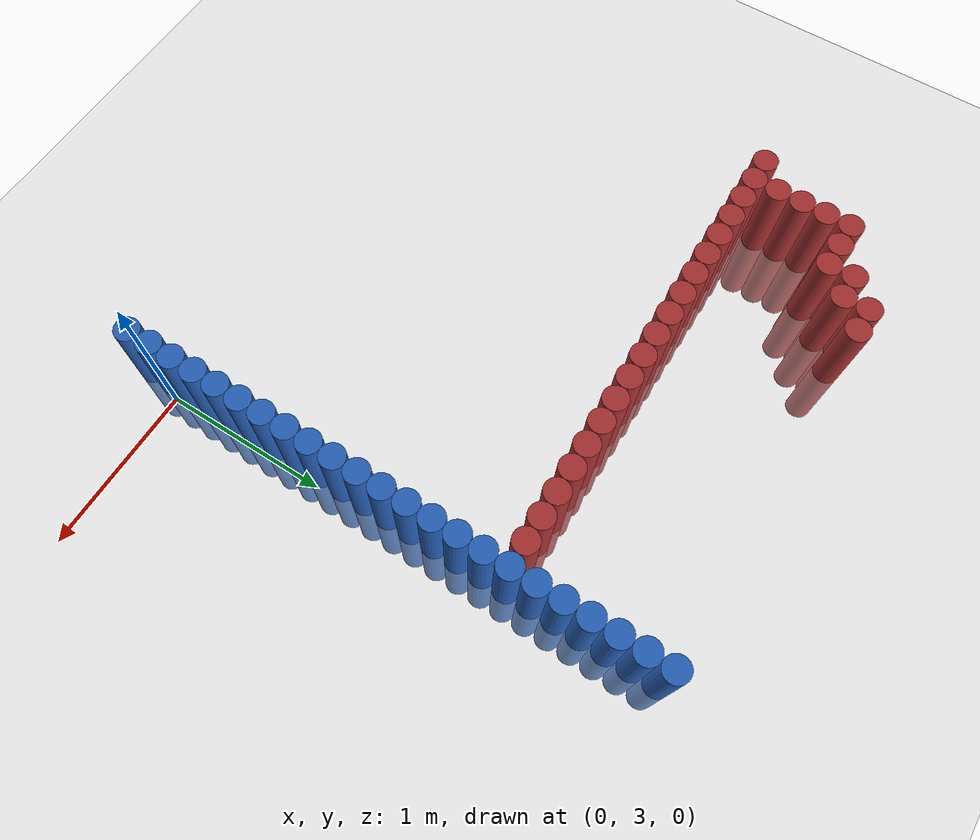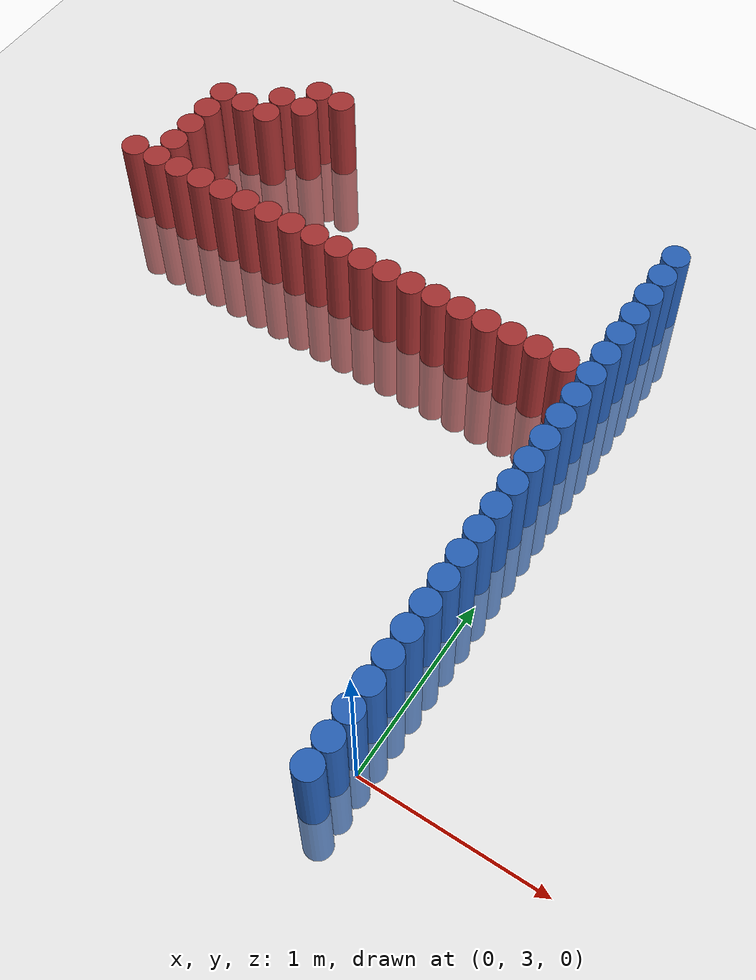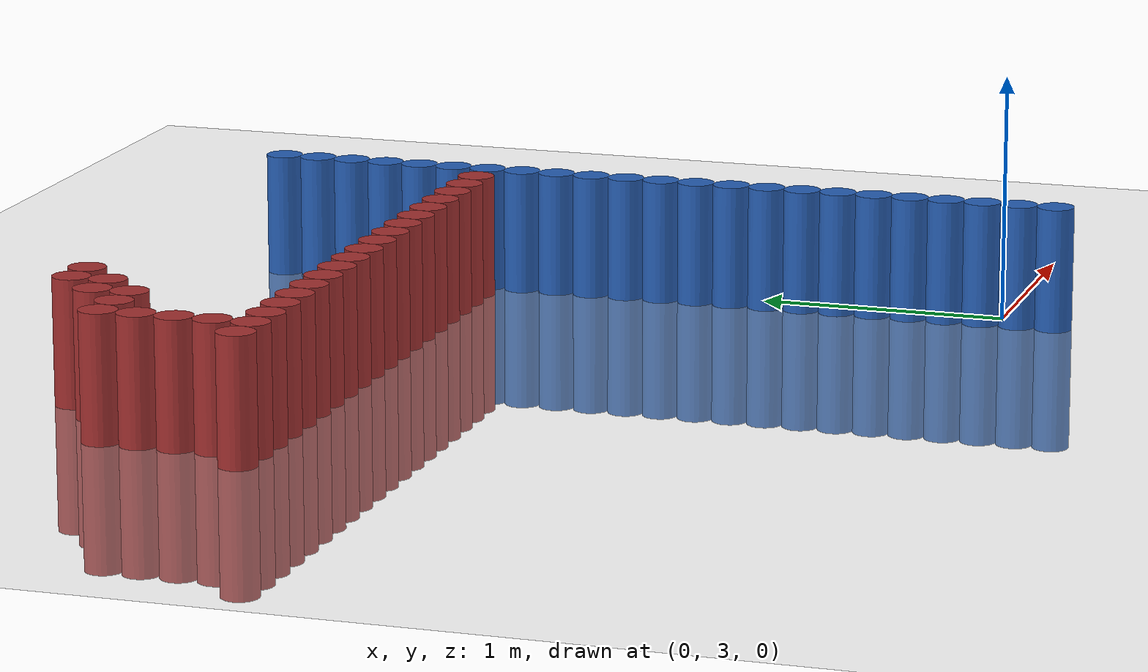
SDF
<sdf version="1.6">
 <world name="default">
  <model name="ground_plane">
   <static>1</static>
   <link name="link">
    <collision name="collision">
     <geometry><plane><normal>0 0 1</normal><size>100 100</size></plane></geometry>
     <surface><friction><ode><mu>100</mu><mu2>50</mu2></ode></friction></surface>
    </collision>
    <visual name="visual">
     <cast_shadows>0</cast_shadows>
     <geometry><plane><normal>0 0 1</normal><size>100 100</size></plane></geometry>
     <material>
      <script><uri>file://media/materials/scripts/gazebo.material</uri><name>Gazebo/Grey</name></script>
     </material>
    </visual>
   </link>
  </model>
  <model name="unit_cylinder_93">
   <static>1</static>
   <pose>-0.075000 2.775000 0.000000 0.000000 0.000000 0.000000</pose>
   <link name="link">
    <inertial>
     <mass>1</mass>
     <inertia><ixx>0.145833</ixx><ixy>0</ixy><ixz>0</ixz><iyy>0.145833</iyy><iyz>0</iyz><izz>0.125</izz></inertia>
    </inertial>
    <collision name="collision">
     <geometry><cylinder><radius>0.075000</radius><length>1</length></cylinder></geometry>
    </collision>
    <visual name="visual">
     <geometry><cylinder><radius>0.075000</radius><length>1</length></cylinder></geometry>
     <material>
      <ambient>0.152000 0.379000 0.720000 1</ambient>
      <diffuse>0.152000 0.379000 0.720000 1</diffuse>
     </material>
     <material>
      <script><name>Gazebo/Grey</name><uri>file://media/materials/scripts/gazebo.material</uri></script>
     </material>
    </visual>
   </link>
  </model>
  <model name="unit_cylinder_95">
   <static>1</static>
   <pose>-0.075000 2.925000 0.000000 0.000000 0.000000 0.000000</pose>
   <link name="link">
    <inertial>
     <mass>1</mass>
     <inertia><ixx>0.145833</ixx><ixy>0</ixy><ixz>0</ixz><iyy>0.145833</iyy><iyz>0</iyz><izz>0.125</izz></inertia>
    </inertial>
    <collision name="collision">
     <geometry><cylinder><radius>0.075000</radius><length>1</length></cylinder></geometry>
    </collision>
    <visual name="visual">
     <geometry><cylinder><radius>0.075000</radius><length>1</length></cylinder></geometry>
     <material>
      <ambient>0.152000 0.379000 0.720000 1</ambient>
      <diffuse>0.152000 0.379000 0.720000 1</diffuse>
     </material>
     <material>
      <script><name>Gazebo/Grey</name><uri>file://media/materials/scripts/gazebo.material</uri></script>
     </material>
    </visual>
   </link>
  </model>
  <model name="unit_cylinder_97">
   <static>1</static>
   <pose>-0.075000 3.075000 0.000000 0.000000 0.000000 0.000000</pose>
   <link name="link">
    <inertial>
     <mass>1</mass>
     <inertia><ixx>0.145833</ixx><ixy>0</ixy><ixz>0</ixz><iyy>0.145833</iyy><iyz>0</iyz><izz>0.125</izz></inertia>
    </inertial>
    <collision name="collision">
     <geometry><cylinder><radius>0.075000</radius><length>1</length></cylinder></geometry>
    </collision>
    <visual name="visual">
     <geometry><cylinder><radius>0.075000</radius><length>1</length></cylinder></geometry>
     <material>
      <ambient>0.152000 0.379000 0.720000 1</ambient>
      <diffuse>0.152000 0.379000 0.720000 1</diffuse>
     </material>
     <material>
      <script><name>Gazebo/Grey</name><uri>file://media/materials/scripts/gazebo.material</uri></script>
     </material>
    </visual>
   </link>
  </model>
  <model name="unit_cylinder_99">
   <static>1</static>
   <pose>-0.075000 3.225000 0.000000 0.000000 0.000000 0.000000</pose>
   <link name="link">
    <inertial>
     <mass>1</mass>
     <inertia><ixx>0.145833</ixx><ixy>0</ixy><ixz>0</ixz><iyy>0.145833</iyy><iyz>0</iyz><izz>0.125</izz></inertia>
    </inertial>
    <collision name="collision">
     <geometry><cylinder><radius>0.075000</radius><length>1</length></cylinder></geometry>
    </collision>
    <visual name="visual">
     <geometry><cylinder><radius>0.075000</radius><length>1</length></cylinder></geometry>
     <material>
      <ambient>0.152000 0.379000 0.720000 1</ambient>
      <diffuse>0.152000 0.379000 0.720000 1</diffuse>
     </material>
     <material>
      <script><name>Gazebo/Grey</name><uri>file://media/materials/scripts/gazebo.material</uri></script>
     </material>
    </visual>
   </link>
  </model>
  <model name="unit_cylinder_101">
   <static>1</static>
   <pose>-0.075000 3.375000 0.000000 0.000000 0.000000 0.000000</pose>
   <link name="link">
    <inertial>
     <mass>1</mass>
     <inertia><ixx>0.145833</ixx><ixy>0</ixy><ixz>0</ixz><iyy>0.145833</iyy><iyz>0</iyz><izz>0.125</izz></inertia>
    </inertial>
    <collision name="collision">
     <geometry><cylinder><radius>0.075000</radius><length>1</length></cylinder></geometry>
    </collision>
    <visual name="visual">
     <geometry><cylinder><radius>0.075000</radius><length>1</length></cylinder></geometry>
     <material>
      <ambient>0.152000 0.379000 0.720000 1</ambient>
      <diffuse>0.152000 0.379000 0.720000 1</diffuse>
     </material>
     <material>
      <script><name>Gazebo/Grey</name><uri>file://media/materials/scripts/gazebo.material</uri></script>
     </material>
    </visual>
   </link>
  </model>
  <model name="unit_cylinder_103">
   <static>1</static>
   <pose>-0.075000 3.525000 0.000000 0.000000 0.000000 0.000000</pose>
   <link name="link">
    <inertial>
     <mass>1</mass>
     <inertia><ixx>0.145833</ixx><ixy>0</ixy><ixz>0</ixz><iyy>0.145833</iyy><iyz>0</iyz><izz>0.125</izz></inertia>
    </inertial>
    <collision name="collision">
     <geometry><cylinder><radius>0.075000</radius><length>1</length></cylinder></geometry>
    </collision>
    <visual name="visual">
     <geometry><cylinder><radius>0.075000</radius><length>1</length></cylinder></geometry>
     <material>
      <ambient>0.152000 0.379000 0.720000 1</ambient>
      <diffuse>0.152000 0.379000 0.720000 1</diffuse>
     </material>
     <material>
      <script><name>Gazebo/Grey</name><uri>file://media/materials/scripts/gazebo.material</uri></script>
     </material>
    </visual>
   </link>
  </model>
  <model name="unit_cylinder_105">
   <static>1</static>
   <pose>-0.075000 3.675000 0.000000 0.000000 0.000000 0.000000</pose>
   <link name="link">
    <inertial>
     <mass>1</mass>
     <inertia><ixx>0.145833</ixx><ixy>0</ixy><ixz>0</ixz><iyy>0.145833</iyy><iyz>0</iyz><izz>0.125</izz></inertia>
    </inertial>
    <collision name="collision">
     <geometry><cylinder><radius>0.075000</radius><length>1</length></cylinder></geometry>
    </collision>
    <visual name="visual">
     <geometry><cylinder><radius>0.075000</radius><length>1</length></cylinder></geometry>
     <material>
      <ambient>0.152000 0.379000 0.720000 1</ambient>
      <diffuse>0.152000 0.379000 0.720000 1</diffuse>
     </material>
     <material>
      <script><name>Gazebo/Grey</name><uri>file://media/materials/scripts/gazebo.material</uri></script>
     </material>
    </visual>
   </link>
  </model>
  <model name="unit_cylinder_107">
   <static>1</static>
   <pose>-0.075000 3.825000 0.000000 0.000000 0.000000 0.000000</pose>
   <link name="link">
    <inertial>
     <mass>1</mass>
     <inertia><ixx>0.145833</ixx><ixy>0</ixy><ixz>0</ixz><iyy>0.145833</iyy><iyz>0</iyz><izz>0.125</izz></inertia>
    </inertial>
    <collision name="collision">
     <geometry><cylinder><radius>0.075000</radius><length>1</length></cylinder></geometry>
    </collision>
    <visual name="visual">
     <geometry><cylinder><radius>0.075000</radius><length>1</length></cylinder></geometry>
     <material>
      <ambient>0.152000 0.379000 0.720000 1</ambient>
      <diffuse>0.152000 0.379000 0.720000 1</diffuse>
     </material>
     <material>
      <script><name>Gazebo/Grey</name><uri>file://media/materials/scripts/gazebo.material</uri></script>
     </material>
    </visual>
   </link>
  </model>
  <model name="unit_cylinder_109">
   <static>1</static>
   <pose>-0.075000 3.975000 0.000000 0.000000 0.000000 0.000000</pose>
   <link name="link">
    <inertial>
     <mass>1</mass>
     <inertia><ixx>0.145833</ixx><ixy>0</ixy><ixz>0</ixz><iyy>0.145833</iyy><iyz>0</iyz><izz>0.125</izz></inertia>
    </inertial>
    <collision name="collision">
     <geometry><cylinder><radius>0.075000</radius><length>1</length></cylinder></geometry>
    </collision>
    <visual name="visual">
     <geometry><cylinder><radius>0.075000</radius><length>1</length></cylinder></geometry>
     <material>
      <ambient>0.152000 0.379000 0.720000 1</ambient>
      <diffuse>0.152000 0.379000 0.720000 1</diffuse>
     </material>
     <material>
      <script><name>Gazebo/Grey</name><uri>file://media/materials/scripts/gazebo.material</uri></script>
     </material>
    </visual>
   </link>
  </model>
  <model name="unit_cylinder_111">
   <static>1</static>
   <pose>-0.075000 4.125000 0.000000 0.000000 0.000000 0.000000</pose>
   <link name="link">
    <inertial>
     <mass>1</mass>
     <inertia><ixx>0.145833</ixx><ixy>0</ixy><ixz>0</ixz><iyy>0.145833</iyy><iyz>0</iyz><izz>0.125</izz></inertia>
    </inertial>
    <collision name="collision">
     <geometry><cylinder><radius>0.075000</radius><length>1</length></cylinder></geometry>
    </collision>
    <visual name="visual">
     <geometry><cylinder><radius>0.075000</radius><length>1</length></cylinder></geometry>
     <material>
      <ambient>0.152000 0.379000 0.720000 1</ambient>
      <diffuse>0.152000 0.379000 0.720000 1</diffuse>
     </material>
     <material>
      <script><name>Gazebo/Grey</name><uri>file://media/materials/scripts/gazebo.material</uri></script>
     </material>
    </visual>
   </link>
  </model>
  <model name="unit_cylinder_113">
   <static>1</static>
   <pose>-0.075000 4.275000 0.000000 0.000000 0.000000 0.000000</pose>
   <link name="link">
    <inertial>
     <mass>1</mass>
     <inertia><ixx>0.145833</ixx><ixy>0</ixy><ixz>0</ixz><iyy>0.145833</iyy><iyz>0</iyz><izz>0.125</izz></inertia>
    </inertial>
    <collision name="collision">
     <geometry><cylinder><radius>0.075000</radius><length>1</length></cylinder></geometry>
    </collision>
    <visual name="visual">
     <geometry><cylinder><radius>0.075000</radius><length>1</length></cylinder></geometry>
     <material>
      <ambient>0.152000 0.379000 0.720000 1</ambient>
      <diffuse>0.152000 0.379000 0.720000 1</diffuse>
     </material>
     <material>
      <script><name>Gazebo/Grey</name><uri>file://media/materials/scripts/gazebo.material</uri></script>
     </material>
    </visual>
   </link>
  </model>
  <model name="unit_cylinder_115">
   <static>1</static>
   <pose>-0.075000 4.425000 0.000000 0.000000 0.000000 0.000000</pose>
   <link name="link">
    <inertial>
     <mass>1</mass>
     <inertia><ixx>0.145833</ixx><ixy>0</ixy><ixz>0</ixz><iyy>0.145833</iyy><iyz>0</iyz><izz>0.125</izz></inertia>
    </inertial>
    <collision name="collision">
     <geometry><cylinder><radius>0.075000</radius><length>1</length></cylinder></geometry>
    </collision>
    <visual name="visual">
     <geometry><cylinder><radius>0.075000</radius><length>1</length></cylinder></geometry>
     <material>
      <ambient>0.152000 0.379000 0.720000 1</ambient>
      <diffuse>0.152000 0.379000 0.720000 1</diffuse>
     </material>
     <material>
      <script><name>Gazebo/Grey</name><uri>file://media/materials/scripts/gazebo.material</uri></script>
     </material>
    </visual>
   </link>
  </model>
  <model name="unit_cylinder_117">
   <static>1</static>
   <pose>-0.075000 4.575000 0.000000 0.000000 0.000000 0.000000</pose>
   <link name="link">
    <inertial>
     <mass>1</mass>
     <inertia><ixx>0.145833</ixx><ixy>0</ixy><ixz>0</ixz><iyy>0.145833</iyy><iyz>0</iyz><izz>0.125</izz></inertia>
    </inertial>
    <collision name="collision">
     <geometry><cylinder><radius>0.075000</radius><length>1</length></cylinder></geometry>
    </collision>
    <visual name="visual">
     <geometry><cylinder><radius>0.075000</radius><length>1</length></cylinder></geometry>
     <material>
      <ambient>0.152000 0.379000 0.720000 1</ambient>
      <diffuse>0.152000 0.379000 0.720000 1</diffuse>
     </material>
     <material>
      <script><name>Gazebo/Grey</name><uri>file://media/materials/scripts/gazebo.material</uri></script>
     </material>
    </visual>
   </link>
  </model>
  <model name="unit_cylinder_119">
   <static>1</static>
   <pose>-0.075000 4.725000 0.000000 0.000000 0.000000 0.000000</pose>
   <link name="link">
    <inertial>
     <mass>1</mass>
     <inertia><ixx>0.145833</ixx><ixy>0</ixy><ixz>0</ixz><iyy>0.145833</iyy><iyz>0</iyz><izz>0.125</izz></inertia>
    </inertial>
    <collision name="collision">
     <geometry><cylinder><radius>0.075000</radius><length>1</length></cylinder></geometry>
    </collision>
    <visual name="visual">
     <geometry><cylinder><radius>0.075000</radius><length>1</length></cylinder></geometry>
     <material>
      <ambient>0.152000 0.379000 0.720000 1</ambient>
      <diffuse>0.152000 0.379000 0.720000 1</diffuse>
     </material>
     <material>
      <script><name>Gazebo/Grey</name><uri>file://media/materials/scripts/gazebo.material</uri></script>
     </material>
    </visual>
   </link>
  </model>
  <model name="unit_cylinder_121">
   <static>1</static>
   <pose>-0.075000 4.875000 0.000000 0.000000 0.000000 0.000000</pose>
   <link name="link">
    <inertial>
     <mass>1</mass>
     <inertia><ixx>0.145833</ixx><ixy>0</ixy><ixz>0</ixz><iyy>0.145833</iyy><iyz>0</iyz><izz>0.125</izz></inertia>
    </inertial>
    <collision name="collision">
     <geometry><cylinder><radius>0.075000</radius><length>1</length></cylinder></geometry>
    </collision>
    <visual name="visual">
     <geometry><cylinder><radius>0.075000</radius><length>1</length></cylinder></geometry>
     <material>
      <ambient>0.152000 0.379000 0.720000 1</ambient>
      <diffuse>0.152000 0.379000 0.720000 1</diffuse>
     </material>
     <material>
      <script><name>Gazebo/Grey</name><uri>file://media/materials/scripts/gazebo.material</uri></script>
     </material>
    </visual>
   </link>
  </model>
  <model name="unit_cylinder_123">
   <static>1</static>
   <pose>-0.075000 5.025000 0.000000 0.000000 0.000000 0.000000</pose>
   <link name="link">
    <inertial>
     <mass>1</mass>
     <inertia><ixx>0.145833</ixx><ixy>0</ixy><ixz>0</ixz><iyy>0.145833</iyy><iyz>0</iyz><izz>0.125</izz></inertia>
    </inertial>
    <collision name="collision">
     <geometry><cylinder><radius>0.075000</radius><length>1</length></cylinder></geometry>
    </collision>
    <visual name="visual">
     <geometry><cylinder><radius>0.075000</radius><length>1</length></cylinder></geometry>
     <material>
      <ambient>0.152000 0.379000 0.720000 1</ambient>
      <diffuse>0.152000 0.379000 0.720000 1</diffuse>
     </material>
     <material>
      <script><name>Gazebo/Grey</name><uri>file://media/materials/scripts/gazebo.material</uri></script>
     </material>
    </visual>
   </link>
  </model>
  <model name="unit_cylinder_317">
   <static>1</static>
   <pose>-2.925000 5.175000 0.000000 0.000000 0.000000 0.000000</pose>
   <link name="link">
    <inertial>
     <mass>1</mass>
     <inertia><ixx>0.145833</ixx><ixy>0</ixy><ixz>0</ixz><iyy>0.145833</iyy><iyz>0</iyz><izz>0.125</izz></inertia>
    </inertial>
    <collision name="collision">
     <geometry><cylinder><radius>0.075000</radius><length>1</length></cylinder></geometry>
    </collision>
    <visual name="visual">
     <geometry><cylinder><radius>0.075000</radius><length>1</length></cylinder></geometry>
     <material>
      <ambient>0.648000 0.192000 0.192000 1</ambient>
      <diffuse>0.648000 0.192000 0.192000 1</diffuse>
     </material>
     <material>
      <script><name>Gazebo/Grey</name><uri>file://media/materials/scripts/gazebo.material</uri></script>
     </material>
    </visual>
   </link>
  </model>
  <model name="unit_cylinder_318">
   <static>1</static>
   <pose>-2.775000 5.175000 0.000000 0.000000 0.000000 0.000000</pose>
   <link name="link">
    <inertial>
     <mass>1</mass>
     <inertia><ixx>0.145833</ixx><ixy>0</ixy><ixz>0</ixz><iyy>0.145833</iyy><iyz>0</iyz><izz>0.125</izz></inertia>
    </inertial>
    <collision name="collision">
     <geometry><cylinder><radius>0.075000</radius><length>1</length></cylinder></geometry>
    </collision>
    <visual name="visual">
     <geometry><cylinder><radius>0.075000</radius><length>1</length></cylinder></geometry>
     <material>
      <ambient>0.648000 0.192000 0.192000 1</ambient>
      <diffuse>0.648000 0.192000 0.192000 1</diffuse>
     </material>
     <material>
      <script><name>Gazebo/Grey</name><uri>file://media/materials/scripts/gazebo.material</uri></script>
     </material>
    </visual>
   </link>
  </model>
  <model name="unit_cylinder_319">
   <static>1</static>
   <pose>-2.775000 5.325000 0.000000 0.000000 0.000000 0.000000</pose>
   <link name="link">
    <inertial>
     <mass>1</mass>
     <inertia><ixx>0.145833</ixx><ixy>0</ixy><ixz>0</ixz><iyy>0.145833</iyy><iyz>0</iyz><izz>0.125</izz></inertia>
    </inertial>
    <collision name="collision">
     <geometry><cylinder><radius>0.075000</radius><length>1</length></cylinder></geometry>
    </collision>
    <visual name="visual">
     <geometry><cylinder><radius>0.075000</radius><length>1</length></cylinder></geometry>
     <material>
      <ambient>0.648000 0.192000 0.192000 1</ambient>
      <diffuse>0.648000 0.192000 0.192000 1</diffuse>
     </material>
     <material>
      <script><name>Gazebo/Grey</name><uri>file://media/materials/scripts/gazebo.material</uri></script>
     </material>
    </visual>
   </link>
  </model>
  <model name="unit_cylinder_320">
   <static>1</static>
   <pose>-2.775000 5.475000 0.000000 0.000000 0.000000 0.000000</pose>
   <link name="link">
    <inertial>
     <mass>1</mass>
     <inertia><ixx>0.145833</ixx><ixy>0</ixy><ixz>0</ixz><iyy>0.145833</iyy><iyz>0</iyz><izz>0.125</izz></inertia>
    </inertial>
    <collision name="collision">
     <geometry><cylinder><radius>0.075000</radius><length>1</length></cylinder></geometry>
    </collision>
    <visual name="visual">
     <geometry><cylinder><radius>0.075000</radius><length>1</length></cylinder></geometry>
     <material>
      <ambient>0.648000 0.192000 0.192000 1</ambient>
      <diffuse>0.648000 0.192000 0.192000 1</diffuse>
     </material>
     <material>
      <script><name>Gazebo/Grey</name><uri>file://media/materials/scripts/gazebo.material</uri></script>
     </material>
    </visual>
   </link>
  </model>
  <model name="unit_cylinder_321">
   <static>1</static>
   <pose>-2.775000 5.625000 0.000000 0.000000 0.000000 0.000000</pose>
   <link name="link">
    <inertial>
     <mass>1</mass>
     <inertia><ixx>0.145833</ixx><ixy>0</ixy><ixz>0</ixz><iyy>0.145833</iyy><iyz>0</iyz><izz>0.125</izz></inertia>
    </inertial>
    <collision name="collision">
     <geometry><cylinder><radius>0.075000</radius><length>1</length></cylinder></geometry>
    </collision>
    <visual name="visual">
     <geometry><cylinder><radius>0.075000</radius><length>1</length></cylinder></geometry>
     <material>
      <ambient>0.648000 0.192000 0.192000 1</ambient>
      <diffuse>0.648000 0.192000 0.192000 1</diffuse>
     </material>
     <material>
      <script><name>Gazebo/Grey</name><uri>file://media/materials/scripts/gazebo.material</uri></script>
     </material>
    </visual>
   </link>
  </model>
  <model name="unit_cylinder_322">
   <static>1</static>
   <pose>-2.775000 5.775000 0.000000 0.000000 0.000000 0.000000</pose>
   <link name="link">
    <inertial>
     <mass>1</mass>
     <inertia><ixx>0.145833</ixx><ixy>0</ixy><ixz>0</ixz><iyy>0.145833</iyy><iyz>0</iyz><izz>0.125</izz></inertia>
    </inertial>
    <collision name="collision">
     <geometry><cylinder><radius>0.075000</radius><length>1</length></cylinder></geometry>
    </collision>
    <visual name="visual">
     <geometry><cylinder><radius>0.075000</radius><length>1</length></cylinder></geometry>
     <material>
      <ambient>0.648000 0.192000 0.192000 1</ambient>
      <diffuse>0.648000 0.192000 0.192000 1</diffuse>
     </material>
     <material>
      <script><name>Gazebo/Grey</name><uri>file://media/materials/scripts/gazebo.material</uri></script>
     </material>
    </visual>
   </link>
  </model>
  <model name="unit_cylinder_323">
   <static>1</static>
   <pose>-2.625000 5.175000 0.000000 0.000000 0.000000 0.000000</pose>
   <link name="link">
    <inertial>
     <mass>1</mass>
     <inertia><ixx>0.145833</ixx><ixy>0</ixy><ixz>0</ixz><iyy>0.145833</iyy><iyz>0</iyz><izz>0.125</izz></inertia>
    </inertial>
    <collision name="collision">
     <geometry><cylinder><radius>0.075000</radius><length>1</length></cylinder></geometry>
    </collision>
    <visual name="visual">
     <geometry><cylinder><radius>0.075000</radius><length>1</length></cylinder></geometry>
     <material>
      <ambient>0.648000 0.192000 0.192000 1</ambient>
      <diffuse>0.648000 0.192000 0.192000 1</diffuse>
     </material>
     <material>
      <script><name>Gazebo/Grey</name><uri>file://media/materials/scripts/gazebo.material</uri></script>
     </material>
    </visual>
   </link>
  </model>
  <model name="unit_cylinder_324">
   <static>1</static>
   <pose>-2.625000 5.775000 0.000000 0.000000 0.000000 0.000000</pose>
   <link name="link">
    <inertial>
     <mass>1</mass>
     <inertia><ixx>0.145833</ixx><ixy>0</ixy><ixz>0</ixz><iyy>0.145833</iyy><iyz>0</iyz><izz>0.125</izz></inertia>
    </inertial>
    <collision name="collision">
     <geometry><cylinder><radius>0.075000</radius><length>1</length></cylinder></geometry>
    </collision>
    <visual name="visual">
     <geometry><cylinder><radius>0.075000</radius><length>1</length></cylinder></geometry>
     <material>
      <ambient>0.648000 0.192000 0.192000 1</ambient>
      <diffuse>0.648000 0.192000 0.192000 1</diffuse>
     </material>
     <material>
      <script><name>Gazebo/Grey</name><uri>file://media/materials/scripts/gazebo.material</uri></script>
     </material>
    </visual>
   </link>
  </model>
  <model name="unit_cylinder_325">
   <static>1</static>
   <pose>-2.475000 5.175000 0.000000 0.000000 0.000000 0.000000</pose>
   <link name="link">
    <inertial>
     <mass>1</mass>
     <inertia><ixx>0.145833</ixx><ixy>0</ixy><ixz>0</ixz><iyy>0.145833</iyy><iyz>0</iyz><izz>0.125</izz></inertia>
    </inertial>
    <collision name="collision">
     <geometry><cylinder><radius>0.075000</radius><length>1</length></cylinder></geometry>
    </collision>
    <visual name="visual">
     <geometry><cylinder><radius>0.075000</radius><length>1</length></cylinder></geometry>
     <material>
      <ambient>0.648000 0.192000 0.192000 1</ambient>
      <diffuse>0.648000 0.192000 0.192000 1</diffuse>
     </material>
     <material>
      <script><name>Gazebo/Grey</name><uri>file://media/materials/scripts/gazebo.material</uri></script>
     </material>
    </visual>
   </link>
  </model>
  <model name="unit_cylinder_326">
   <static>1</static>
   <pose>-2.475000 5.775000 0.000000 0.000000 0.000000 0.000000</pose>
   <link name="link">
    <inertial>
     <mass>1</mass>
     <inertia><ixx>0.145833</ixx><ixy>0</ixy><ixz>0</ixz><iyy>0.145833</iyy><iyz>0</iyz><izz>0.125</izz></inertia>
    </inertial>
    <collision name="collision">
     <geometry><cylinder><radius>0.075000</radius><length>1</length></cylinder></geometry>
    </collision>
    <visual name="visual">
     <geometry><cylinder><radius>0.075000</radius><length>1</length></cylinder></geometry>
     <material>
      <ambient>0.648000 0.192000 0.192000 1</ambient>
      <diffuse>0.648000 0.192000 0.192000 1</diffuse>
     </material>
     <material>
      <script><name>Gazebo/Grey</name><uri>file://media/materials/scripts/gazebo.material</uri></script>
     </material>
    </visual>
   </link>
  </model>
  <model name="unit_cylinder_327">
   <static>1</static>
   <pose>-2.475000 5.925000 0.000000 0.000000 0.000000 0.000000</pose>
   <link name="link">
    <inertial>
     <mass>1</mass>
     <inertia><ixx>0.145833</ixx><ixy>0</ixy><ixz>0</ixz><iyy>0.145833</iyy><iyz>0</iyz><izz>0.125</izz></inertia>
    </inertial>
    <collision name="collision">
     <geometry><cylinder><radius>0.075000</radius><length>1</length></cylinder></geometry>
    </collision>
    <visual name="visual">
     <geometry><cylinder><radius>0.075000</radius><length>1</length></cylinder></geometry>
     <material>
      <ambient>0.648000 0.192000 0.192000 1</ambient>
      <diffuse>0.648000 0.192000 0.192000 1</diffuse>
     </material>
     <material>
      <script><name>Gazebo/Grey</name><uri>file://media/materials/scripts/gazebo.material</uri></script>
     </material>
    </visual>
   </link>
  </model>
  <model name="unit_cylinder_328">
   <static>1</static>
   <pose>-2.325000 5.175000 0.000000 0.000000 0.000000 0.000000</pose>
   <link name="link">
    <inertial>
     <mass>1</mass>
     <inertia><ixx>0.145833</ixx><ixy>0</ixy><ixz>0</ixz><iyy>0.145833</iyy><iyz>0</iyz><izz>0.125</izz></inertia>
    </inertial>
    <collision name="collision">
     <geometry><cylinder><radius>0.075000</radius><length>1</length></cylinder></geometry>
    </collision>
    <visual name="visual">
     <geometry><cylinder><radius>0.075000</radius><length>1</length></cylinder></geometry>
     <material>
      <ambient>0.648000 0.192000 0.192000 1</ambient>
      <diffuse>0.648000 0.192000 0.192000 1</diffuse>
     </material>
     <material>
      <script><name>Gazebo/Grey</name><uri>file://media/materials/scripts/gazebo.material</uri></script>
     </material>
    </visual>
   </link>
  </model>
  <model name="unit_cylinder_329">
   <static>1</static>
   <pose>-2.325000 5.925000 0.000000 0.000000 0.000000 0.000000</pose>
   <link name="link">
    <inertial>
     <mass>1</mass>
     <inertia><ixx>0.145833</ixx><ixy>0</ixy><ixz>0</ixz><iyy>0.145833</iyy><iyz>0</iyz><izz>0.125</izz></inertia>
    </inertial>
    <collision name="collision">
     <geometry><cylinder><radius>0.075000</radius><length>1</length></cylinder></geometry>
    </collision>
    <visual name="visual">
     <geometry><cylinder><radius>0.075000</radius><length>1</length></cylinder></geometry>
     <material>
      <ambient>0.648000 0.192000 0.192000 1</ambient>
      <diffuse>0.648000 0.192000 0.192000 1</diffuse>
     </material>
     <material>
      <script><name>Gazebo/Grey</name><uri>file://media/materials/scripts/gazebo.material</uri></script>
     </material>
    </visual>
   </link>
  </model>
  <model name="unit_cylinder_330">
   <static>1</static>
   <pose>-2.325000 6.075000 0.000000 0.000000 0.000000 0.000000</pose>
   <link name="link">
    <inertial>
     <mass>1</mass>
     <inertia><ixx>0.145833</ixx><ixy>0</ixy><ixz>0</ixz><iyy>0.145833</iyy><iyz>0</iyz><izz>0.125</izz></inertia>
    </inertial>
    <collision name="collision">
     <geometry><cylinder><radius>0.075000</radius><length>1</length></cylinder></geometry>
    </collision>
    <visual name="visual">
     <geometry><cylinder><radius>0.075000</radius><length>1</length></cylinder></geometry>
     <material>
      <ambient>0.648000 0.192000 0.192000 1</ambient>
      <diffuse>0.648000 0.192000 0.192000 1</diffuse>
     </material>
     <material>
      <script><name>Gazebo/Grey</name><uri>file://media/materials/scripts/gazebo.material</uri></script>
     </material>
    </visual>
   </link>
  </model>
  <model name="unit_cylinder_331">
   <static>1</static>
   <pose>-2.175000 5.175000 0.000000 0.000000 0.000000 0.000000</pose>
   <link name="link">
    <inertial>
     <mass>1</mass>
     <inertia><ixx>0.145833</ixx><ixy>0</ixy><ixz>0</ixz><iyy>0.145833</iyy><iyz>0</iyz><izz>0.125</izz></inertia>
    </inertial>
    <collision name="collision">
     <geometry><cylinder><radius>0.075000</radius><length>1</length></cylinder></geometry>
    </collision>
    <visual name="visual">
     <geometry><cylinder><radius>0.075000</radius><length>1</length></cylinder></geometry>
     <material>
      <ambient>0.648000 0.192000 0.192000 1</ambient>
      <diffuse>0.648000 0.192000 0.192000 1</diffuse>
     </material>
     <material>
      <script><name>Gazebo/Grey</name><uri>file://media/materials/scripts/gazebo.material</uri></script>
     </material>
    </visual>
   </link>
  </model>
  <model name="unit_cylinder_332">
   <static>1</static>
   <pose>-2.175000 6.075000 0.000000 0.000000 0.000000 0.000000</pose>
   <link name="link">
    <inertial>
     <mass>1</mass>
     <inertia><ixx>0.145833</ixx><ixy>0</ixy><ixz>0</ixz><iyy>0.145833</iyy><iyz>0</iyz><izz>0.125</izz></inertia>
    </inertial>
    <collision name="collision">
     <geometry><cylinder><radius>0.075000</radius><length>1</length></cylinder></geometry>
    </collision>
    <visual name="visual">
     <geometry><cylinder><radius>0.075000</radius><length>1</length></cylinder></geometry>
     <material>
      <ambient>0.648000 0.192000 0.192000 1</ambient>
      <diffuse>0.648000 0.192000 0.192000 1</diffuse>
     </material>
     <material>
      <script><name>Gazebo/Grey</name><uri>file://media/materials/scripts/gazebo.material</uri></script>
     </material>
    </visual>
   </link>
  </model>
  <model name="unit_cylinder_334">
   <static>1</static>
   <pose>-2.025000 5.175000 0.000000 0.000000 0.000000 0.000000</pose>
   <link name="link">
    <inertial>
     <mass>1</mass>
     <inertia><ixx>0.145833</ixx><ixy>0</ixy><ixz>0</ixz><iyy>0.145833</iyy><iyz>0</iyz><izz>0.125</izz></inertia>
    </inertial>
    <collision name="collision">
     <geometry><cylinder><radius>0.075000</radius><length>1</length></cylinder></geometry>
    </collision>
    <visual name="visual">
     <geometry><cylinder><radius>0.075000</radius><length>1</length></cylinder></geometry>
     <material>
      <ambient>0.648000 0.192000 0.192000 1</ambient>
      <diffuse>0.648000 0.192000 0.192000 1</diffuse>
     </material>
     <material>
      <script><name>Gazebo/Grey</name><uri>file://media/materials/scripts/gazebo.material</uri></script>
     </material>
    </visual>
   </link>
  </model>
  <model name="unit_cylinder_340">
   <static>1</static>
   <pose>-1.875000 5.175000 0.000000 0.000000 0.000000 0.000000</pose>
   <link name="link">
    <inertial>
     <mass>1</mass>
     <inertia><ixx>0.145833</ixx><ixy>0</ixy><ixz>0</ixz><iyy>0.145833</iyy><iyz>0</iyz><izz>0.125</izz></inertia>
    </inertial>
    <collision name="collision">
     <geometry><cylinder><radius>0.075000</radius><length>1</length></cylinder></geometry>
    </collision>
    <visual name="visual">
     <geometry><cylinder><radius>0.075000</radius><length>1</length></cylinder></geometry>
     <material>
      <ambient>0.648000 0.192000 0.192000 1</ambient>
      <diffuse>0.648000 0.192000 0.192000 1</diffuse>
     </material>
     <material>
      <script><name>Gazebo/Grey</name><uri>file://media/materials/scripts/gazebo.material</uri></script>
     </material>
    </visual>
   </link>
  </model>
  <model name="unit_cylinder_362">
   <static>1</static>
   <pose>-1.725000 5.175000 0.000000 0.000000 0.000000 0.000000</pose>
   <link name="link">
    <inertial>
     <mass>1</mass>
     <inertia><ixx>0.145833</ixx><ixy>0</ixy><ixz>0</ixz><iyy>0.145833</iyy><iyz>0</iyz><izz>0.125</izz></inertia>
    </inertial>
    <collision name="collision">
     <geometry><cylinder><radius>0.075000</radius><length>1</length></cylinder></geometry>
    </collision>
    <visual name="visual">
     <geometry><cylinder><radius>0.075000</radius><length>1</length></cylinder></geometry>
     <material>
      <ambient>0.648000 0.192000 0.192000 1</ambient>
      <diffuse>0.648000 0.192000 0.192000 1</diffuse>
     </material>
     <material>
      <script><name>Gazebo/Grey</name><uri>file://media/materials/scripts/gazebo.material</uri></script>
     </material>
    </visual>
   </link>
  </model>
  <model name="unit_cylinder_364">
   <static>1</static>
   <pose>-1.575000 5.175000 0.000000 0.000000 0.000000 0.000000</pose>
   <link name="link">
    <inertial>
     <mass>1</mass>
     <inertia><ixx>0.145833</ixx><ixy>0</ixy><ixz>0</ixz><iyy>0.145833</iyy><iyz>0</iyz><izz>0.125</izz></inertia>
    </inertial>
    <collision name="collision">
     <geometry><cylinder><radius>0.075000</radius><length>1</length></cylinder></geometry>
    </collision>
    <visual name="visual">
     <geometry><cylinder><radius>0.075000</radius><length>1</length></cylinder></geometry>
     <material>
      <ambient>0.648000 0.192000 0.192000 1</ambient>
      <diffuse>0.648000 0.192000 0.192000 1</diffuse>
     </material>
     <material>
      <script><name>Gazebo/Grey</name><uri>file://media/materials/scripts/gazebo.material</uri></script>
     </material>
    </visual>
   </link>
  </model>
  <model name="unit_cylinder_366">
   <static>1</static>
   <pose>-1.425000 5.175000 0.000000 0.000000 0.000000 0.000000</pose>
   <link name="link">
    <inertial>
     <mass>1</mass>
     <inertia><ixx>0.145833</ixx><ixy>0</ixy><ixz>0</ixz><iyy>0.145833</iyy><iyz>0</iyz><izz>0.125</izz></inertia>
    </inertial>
    <collision name="collision">
     <geometry><cylinder><radius>0.075000</radius><length>1</length></cylinder></geometry>
    </collision>
    <visual name="visual">
     <geometry><cylinder><radius>0.075000</radius><length>1</length></cylinder></geometry>
     <material>
      <ambient>0.648000 0.192000 0.192000 1</ambient>
      <diffuse>0.648000 0.192000 0.192000 1</diffuse>
     </material>
     <material>
      <script><name>Gazebo/Grey</name><uri>file://media/materials/scripts/gazebo.material</uri></script>
     </material>
    </visual>
   </link>
  </model>
  <model name="unit_cylinder_368">
   <static>1</static>
   <pose>-1.275000 5.175000 0.000000 0.000000 0.000000 0.000000</pose>
   <link name="link">
    <inertial>
     <mass>1</mass>
     <inertia><ixx>0.145833</ixx><ixy>0</ixy><ixz>0</ixz><iyy>0.145833</iyy><iyz>0</iyz><izz>0.125</izz></inertia>
    </inertial>
    <collision name="collision">
     <geometry><cylinder><radius>0.075000</radius><length>1</length></cylinder></geometry>
    </collision>
    <visual name="visual">
     <geometry><cylinder><radius>0.075000</radius><length>1</length></cylinder></geometry>
     <material>
      <ambient>0.648000 0.192000 0.192000 1</ambient>
      <diffuse>0.648000 0.192000 0.192000 1</diffuse>
     </material>
     <material>
      <script><name>Gazebo/Grey</name><uri>file://media/materials/scripts/gazebo.material</uri></script>
     </material>
    </visual>
   </link>
  </model>
  <model name="unit_cylinder_370">
   <static>1</static>
   <pose>-1.125000 5.175000 0.000000 0.000000 0.000000 0.000000</pose>
   <link name="link">
    <inertial>
     <mass>1</mass>
     <inertia><ixx>0.145833</ixx><ixy>0</ixy><ixz>0</ixz><iyy>0.145833</iyy><iyz>0</iyz><izz>0.125</izz></inertia>
    </inertial>
    <collision name="collision">
     <geometry><cylinder><radius>0.075000</radius><length>1</length></cylinder></geometry>
    </collision>
    <visual name="visual">
     <geometry><cylinder><radius>0.075000</radius><length>1</length></cylinder></geometry>
     <material>
      <ambient>0.648000 0.192000 0.192000 1</ambient>
      <diffuse>0.648000 0.192000 0.192000 1</diffuse>
     </material>
     <material>
      <script><name>Gazebo/Grey</name><uri>file://media/materials/scripts/gazebo.material</uri></script>
     </material>
    </visual>
   </link>
  </model>
  <model name="unit_cylinder_372">
   <static>1</static>
   <pose>-0.975000 5.175000 0.000000 0.000000 0.000000 0.000000</pose>
   <link name="link">
    <inertial>
     <mass>1</mass>
     <inertia><ixx>0.145833</ixx><ixy>0</ixy><ixz>0</ixz><iyy>0.145833</iyy><iyz>0</iyz><izz>0.125</izz></inertia>
    </inertial>
    <collision name="collision">
     <geometry><cylinder><radius>0.075000</radius><length>1</length></cylinder></geometry>
    </collision>
    <visual name="visual">
     <geometry><cylinder><radius>0.075000</radius><length>1</length></cylinder></geometry>
     <material>
      <ambient>0.648000 0.192000 0.192000 1</ambient>
      <diffuse>0.648000 0.192000 0.192000 1</diffuse>
     </material>
     <material>
      <script><name>Gazebo/Grey</name><uri>file://media/materials/scripts/gazebo.material</uri></script>
     </material>
    </visual>
   </link>
  </model>
  <model name="unit_cylinder_374">
   <static>1</static>
   <pose>-0.825000 5.175000 0.000000 0.000000 0.000000 0.000000</pose>
   <link name="link">
    <inertial>
     <mass>1</mass>
     <inertia><ixx>0.145833</ixx><ixy>0</ixy><ixz>0</ixz><iyy>0.145833</iyy><iyz>0</iyz><izz>0.125</izz></inertia>
    </inertial>
    <collision name="collision">
     <geometry><cylinder><radius>0.075000</radius><length>1</length></cylinder></geometry>
    </collision>
    <visual name="visual">
     <geometry><cylinder><radius>0.075000</radius><length>1</length></cylinder></geometry>
     <material>
      <ambient>0.648000 0.192000 0.192000 1</ambient>
      <diffuse>0.648000 0.192000 0.192000 1</diffuse>
     </material>
     <material>
      <script><name>Gazebo/Grey</name><uri>file://media/materials/scripts/gazebo.material</uri></script>
     </material>
    </visual>
   </link>
  </model>
  <model name="unit_cylinder_376">
   <static>1</static>
   <pose>-0.675000 5.175000 0.000000 0.000000 0.000000 0.000000</pose>
   <link name="link">
    <inertial>
     <mass>1</mass>
     <inertia><ixx>0.145833</ixx><ixy>0</ixy><ixz>0</ixz><iyy>0.145833</iyy><iyz>0</iyz><izz>0.125</izz></inertia>
    </inertial>
    <collision name="collision">
     <geometry><cylinder><radius>0.075000</radius><length>1</length></cylinder></geometry>
    </collision>
    <visual name="visual">
     <geometry><cylinder><radius>0.075000</radius><length>1</length></cylinder></geometry>
     <material>
      <ambient>0.648000 0.192000 0.192000 1</ambient>
      <diffuse>0.648000 0.192000 0.192000 1</diffuse>
     </material>
     <material>
      <script><name>Gazebo/Grey</name><uri>file://media/materials/scripts/gazebo.material</uri></script>
     </material>
    </visual>
   </link>
  </model>
  <model name="unit_cylinder_378">
   <static>1</static>
   <pose>-0.525000 5.175000 0.000000 0.000000 0.000000 0.000000</pose>
   <link name="link">
    <inertial>
     <mass>1</mass>
     <inertia><ixx>0.145833</ixx><ixy>0</ixy><ixz>0</ixz><iyy>0.145833</iyy><iyz>0</iyz><izz>0.125</izz></inertia>
    </inertial>
    <collision name="collision">
     <geometry><cylinder><radius>0.075000</radius><length>1</length></cylinder></geometry>
    </collision>
    <visual name="visual">
     <geometry><cylinder><radius>0.075000</radius><length>1</length></cylinder></geometry>
     <material>
      <ambient>0.648000 0.192000 0.192000 1</ambient>
      <diffuse>0.648000 0.192000 0.192000 1</diffuse>
     </material>
     <material>
      <script><name>Gazebo/Grey</name><uri>file://media/materials/scripts/gazebo.material</uri></script>
     </material>
    </visual>
   </link>
  </model>
  <model name="unit_cylinder_380">
   <static>1</static>
   <pose>-0.375000 5.175000 0.000000 0.000000 0.000000 0.000000</pose>
   <link name="link">
    <inertial>
     <mass>1</mass>
     <inertia><ixx>0.145833</ixx><ixy>0</ixy><ixz>0</ixz><iyy>0.145833</iyy><iyz>0</iyz><izz>0.125</izz></inertia>
    </inertial>
    <collision name="collision">
     <geometry><cylinder><radius>0.075000</radius><length>1</length></cylinder></geometry>
    </collision>
    <visual name="visual">
     <geometry><cylinder><radius>0.075000</radius><length>1</length></cylinder></geometry>
     <material>
      <ambient>0.648000 0.192000 0.192000 1</ambient>
      <diffuse>0.648000 0.192000 0.192000 1</diffuse>
     </material>
     <material>
      <script><name>Gazebo/Grey</name><uri>file://media/materials/scripts/gazebo.material</uri></script>
     </material>
    </visual>
   </link>
  </model>
  <model name="unit_cylinder_382">
   <static>1</static>
   <pose>-0.225000 5.175000 0.000000 0.000000 0.000000 0.000000</pose>
   <link name="link">
    <inertial>
     <mass>1</mass>
     <inertia><ixx>0.145833</ixx><ixy>0</ixy><ixz>0</ixz><iyy>0.145833</iyy><iyz>0</iyz><izz>0.125</izz></inertia>
    </inertial>
    <collision name="collision">
     <geometry><cylinder><radius>0.075000</radius><length>1</length></cylinder></geometry>
    </collision>
    <visual name="visual">
     <geometry><cylinder><radius>0.075000</radius><length>1</length></cylinder></geometry>
     <material>
      <ambient>0.648000 0.192000 0.192000 1</ambient>
      <diffuse>0.648000 0.192000 0.192000 1</diffuse>
     </material>
     <material>
      <script><name>Gazebo/Grey</name><uri>file://media/materials/scripts/gazebo.material</uri></script>
     </material>
    </visual>
   </link>
  </model>
  <model name="unit_cylinder_384">
   <static>1</static>
   <pose>-0.075000 5.175000 0.000000 0.000000 0.000000 0.000000</pose>
   <link name="link">
    <inertial>
     <mass>1</mass>
     <inertia><ixx>0.145833</ixx><ixy>0</ixy><ixz>0</ixz><iyy>0.145833</iyy><iyz>0</iyz><izz>0.125</izz></inertia>
    </inertial>
    <collision name="collision">
     <geometry><cylinder><radius>0.075000</radius><length>1</length></cylinder></geometry>
    </collision>
    <visual name="visual">
     <geometry><cylinder><radius>0.075000</radius><length>1</length></cylinder></geometry>
     <material>
      <ambient>0.152000 0.379000 0.720000 1</ambient>
      <diffuse>0.152000 0.379000 0.720000 1</diffuse>
     </material>
     <material>
      <script><name>Gazebo/Grey</name><uri>file://media/materials/scripts/gazebo.material</uri></script>
     </material>
    </visual>
   </link>
  </model>
  <model name="unit_cylinder_385">
   <static>1</static>
   <pose>-0.075000 5.325000 0.000000 0.000000 0.000000 0.000000</pose>
   <link name="link">
    <inertial>
     <mass>1</mass>
     <inertia><ixx>0.145833</ixx><ixy>0</ixy><ixz>0</ixz><iyy>0.145833</iyy><iyz>0</iyz><izz>0.125</izz></inertia>
    </inertial>
    <collision name="collision">
     <geometry><cylinder><radius>0.075000</radius><length>1</length></cylinder></geometry>
    </collision>
    <visual name="visual">
     <geometry><cylinder><radius>0.075000</radius><length>1</length></cylinder></geometry>
     <material>
      <ambient>0.152000 0.379000 0.720000 1</ambient>
      <diffuse>0.152000 0.379000 0.720000 1</diffuse>
     </material>
     <material>
      <script><name>Gazebo/Grey</name><uri>file://media/materials/scripts/gazebo.material</uri></script>
     </material>
    </visual>
   </link>
  </model>
  <model name="unit_cylinder_386">
   <static>1</static>
   <pose>-0.075000 5.475000 0.000000 0.000000 0.000000 0.000000</pose>
   <link name="link">
    <inertial>
     <mass>1</mass>
     <inertia><ixx>0.145833</ixx><ixy>0</ixy><ixz>0</ixz><iyy>0.145833</iyy><iyz>0</iyz><izz>0.125</izz></inertia>
    </inertial>
    <collision name="collision">
     <geometry><cylinder><radius>0.075000</radius><length>1</length></cylinder></geometry>
    </collision>
    <visual name="visual">
     <geometry><cylinder><radius>0.075000</radius><length>1</length></cylinder></geometry>
     <material>
      <ambient>0.152000 0.379000 0.720000 1</ambient>
      <diffuse>0.152000 0.379000 0.720000 1</diffuse>
     </material>
     <material>
      <script><name>Gazebo/Grey</name><uri>file://media/materials/scripts/gazebo.material</uri></script>
     </material>
    </visual>
   </link>
  </model>
  <model name="unit_cylinder_387">
   <static>1</static>
   <pose>-0.075000 5.625000 0.000000 0.000000 0.000000 0.000000</pose>
   <link name="link">
    <inertial>
     <mass>1</mass>
     <inertia><ixx>0.145833</ixx><ixy>0</ixy><ixz>0</ixz><iyy>0.145833</iyy><iyz>0</iyz><izz>0.125</izz></inertia>
    </inertial>
    <collision name="collision">
     <geometry><cylinder><radius>0.075000</radius><length>1</length></cylinder></geometry>
    </collision>
    <visual name="visual">
     <geometry><cylinder><radius>0.075000</radius><length>1</length></cylinder></geometry>
     <material>
      <ambient>0.152000 0.379000 0.720000 1</ambient>
      <diffuse>0.152000 0.379000 0.720000 1</diffuse>
     </material>
     <material>
      <script><name>Gazebo/Grey</name><uri>file://media/materials/scripts/gazebo.material</uri></script>
     </material>
    </visual>
   </link>
  </model>
  <model name="unit_cylinder_388">
   <static>1</static>
   <pose>-0.075000 5.775000 0.000000 0.000000 0.000000 0.000000</pose>
   <link name="link">
    <inertial>
     <mass>1</mass>
     <inertia><ixx>0.145833</ixx><ixy>0</ixy><ixz>0</ixz><iyy>0.145833</iyy><iyz>0</iyz><izz>0.125</izz></inertia>
    </inertial>
    <collision name="collision">
     <geometry><cylinder><radius>0.075000</radius><length>1</length></cylinder></geometry>
    </collision>
    <visual name="visual">
     <geometry><cylinder><radius>0.075000</radius><length>1</length></cylinder></geometry>
     <material>
      <ambient>0.152000 0.379000 0.720000 1</ambient>
      <diffuse>0.152000 0.379000 0.720000 1</diffuse>
     </material>
     <material>
      <script><name>Gazebo/Grey</name><uri>file://media/materials/scripts/gazebo.material</uri></script>
     </material>
    </visual>
   </link>
  </model>
  <model name="unit_cylinder_389">
   <static>1</static>
   <pose>-0.075000 5.925000 0.000000 0.000000 0.000000 0.000000</pose>
   <link name="link">
    <inertial>
     <mass>1</mass>
     <inertia><ixx>0.145833</ixx><ixy>0</ixy><ixz>0</ixz><iyy>0.145833</iyy><iyz>0</iyz><izz>0.125</izz></inertia>
    </inertial>
    <collision name="collision">
     <geometry><cylinder><radius>0.075000</radius><length>1</length></cylinder></geometry>
    </collision>
    <visual name="visual">
     <geometry><cylinder><radius>0.075000</radius><length>1</length></cylinder></geometry>
     <material>
      <ambient>0.152000 0.379000 0.720000 1</ambient>
      <diffuse>0.152000 0.379000 0.720000 1</diffuse>
     </material>
     <material>
      <script><name>Gazebo/Grey</name><uri>file://media/materials/scripts/gazebo.material</uri></script>
     </material>
    </visual>
   </link>
  </model>
  <model name="unit_cylinder_390">
   <static>1</static>
   <pose>-0.075000 6.075000 0.000000 0.000000 0.000000 0.000000</pose>
   <link name="link">
    <inertial>
     <mass>1</mass>
     <inertia><ixx>0.145833</ixx><ixy>0</ixy><ixz>0</ixz><iyy>0.145833</iyy><iyz>0</iyz><izz>0.125</izz></inertia>
    </inertial>
    <collision name="collision">
     <geometry><cylinder><radius>0.075000</radius><length>1</length></cylinder></geometry>
    </collision>
    <visual name="visual">
     <geometry><cylinder><radius>0.075000</radius><length>1</length></cylinder></geometry>
     <material>
      <ambient>0.152000 0.379000 0.720000 1</ambient>
      <diffuse>0.152000 0.379000 0.720000 1</diffuse>
     </material>
     <material>
      <script><name>Gazebo/Grey</name><uri>file://media/materials/scripts/gazebo.material</uri></script>
     </material>
    </visual>
   </link>
  </model>
 </world>
</sdf>
